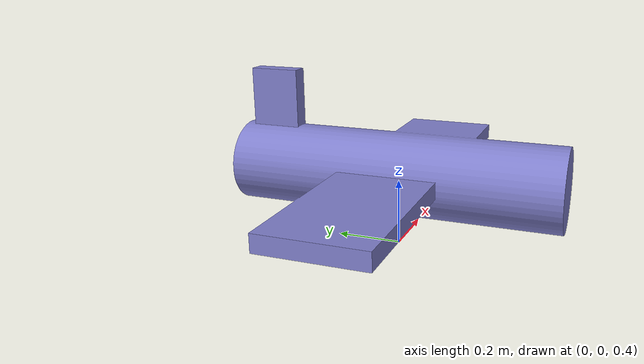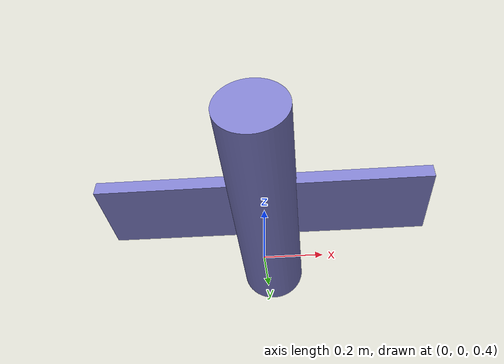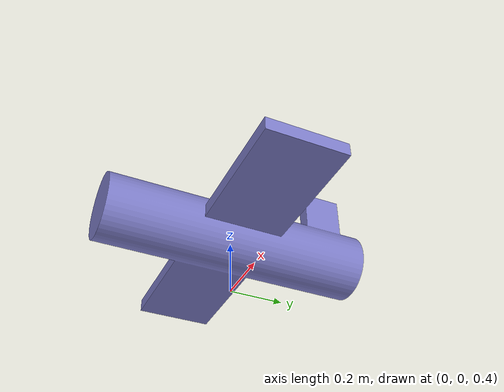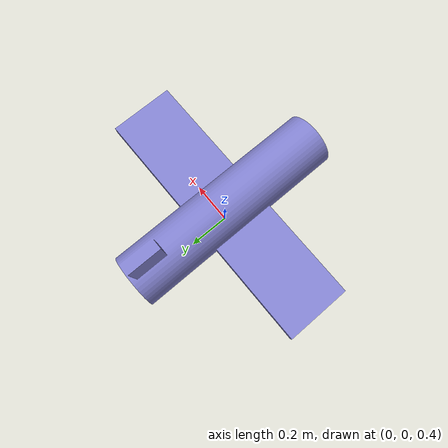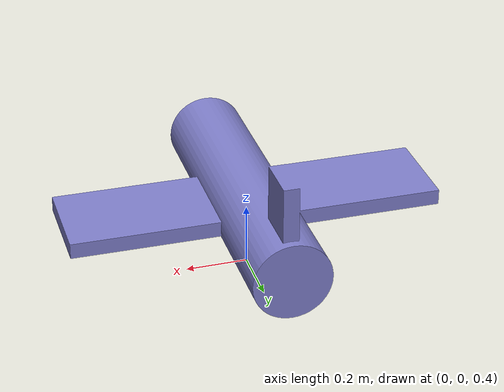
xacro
<?xml version="1.0"?>
<robot name="plane" xmlns:xacro="http://www.ros.org/wiki/xacro">

    <material name="weird">
	    <color rgba="0.5 0.5 0.8 1"/>
    </material>

    <link name="world">

    </link>

    <joint name="world_joint" type="fixed">
        <origin xyz="0 0 0.5" rpy="0 0 0" />
        <parent link="world" />
        <child link="plane" />
    </joint>

    <link name="plane">

    </link>

    <joint name="imu_joint" type="floating">
        <origin xyz="0 0 0" rpy="0 0 0" />
        <parent link="plane" />
        <child link="imu_link" />
    </joint>

    <link name="imu_link">
      <visual>
        <origin rpy="1.57 0 0" xyz="-0.6 0.5 0"/>
        <geometry>
          <mesh filename="package://my_robot_description/meshes/basic_plane_2.STL" scale="0.01 0.01 0.01"/>
        </geometry>
        <material name="weird"/>
      </visual>
    </link>

</robot>
